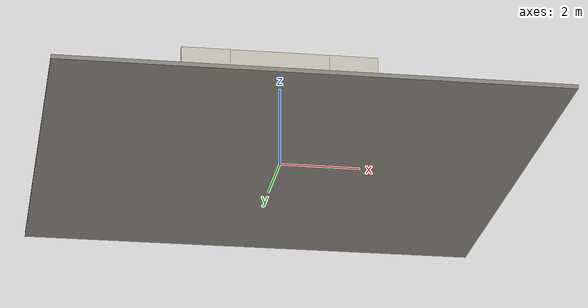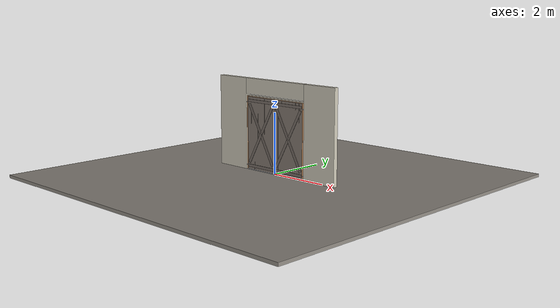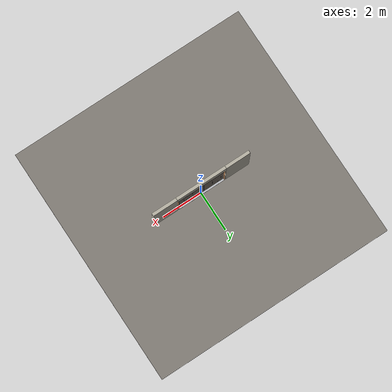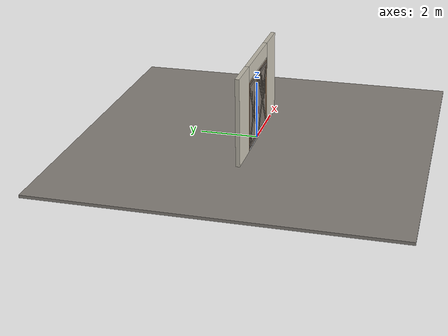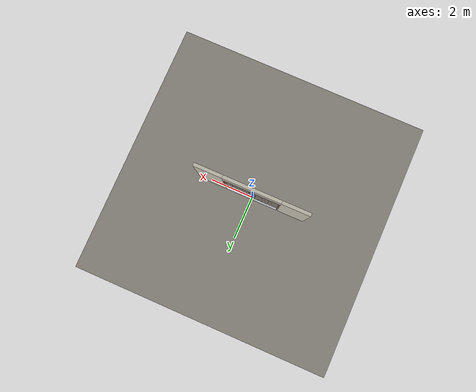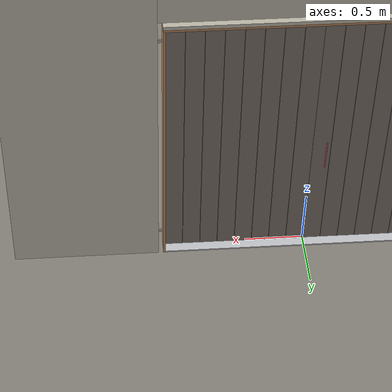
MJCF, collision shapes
<?xml version="1.0" ?>
<mujoco model="db0395_swing_double_full">
  <compiler angle="radian" meshdir="../../hardware" texturedir="../../textures" autolimits="true" inertiafromgeom="false"/>
  <option timestep="0.002" integrator="implicitfast" cone="elliptic" impratio="10" noslip_iterations="3">
    <flag multiccd="enable"/>
  </option>
  <size memory="16M"/>
  <default>
    <geom condim="4" solref="0.005 1" solimp="0.95 0.99 0.001"/>
    <joint solreflimit="0.005 1" solimplimit="0.95 0.99 0.001"/>
    <tendon solreflimit="0.005 1"/>
    <equality solref="0.002 1"/>
  </default>
  <visual>
    <headlight ambient="0.4 0.4 0.4" diffuse="0.7 0.7 0.7" specular="0.2 0.2 0.2"/>
    <quality shadowsize="4096"/>
    <map znear="0.01" zfar="60"/>
  </visual>
  <asset>
    <mesh name="pull_2b47e55ff8" file="pull_2b47e55ff8.obj"/>
    <mesh name="strap_hinge_118b895b75" file="strap_hinge_118b895b75.obj"/>
    <material name="mat_floor" rgba="0.55 0.53 0.5 1" specular="0.2" shininess="0.15" reflectance="0"/>
    <material name="mat_wall" rgba="0.78 0.76 0.7 1" specular="0.2" shininess="0.1" reflectance="0"/>
    <material name="mat_leaf_a" rgba="0.5 0.46 0.425 1" specular="0.2" shininess="0.15" reflectance="0"/>
    <material name="mat_leaf_a_brace" rgba="0.45 0.414 0.383 1" specular="0.2" shininess="0.2" reflectance="0"/>
    <material name="mat_hinge" rgba="0.65 0.66 0.68 1" specular="0.74" shininess="0.5" reflectance="0.36"/>
    <material name="mat_op_black_matte_metal" rgba="0.05 0.05 0.05 1" specular="0.38" shininess="0.3" reflectance="0.12"/>
    <material name="mat_leaf_b" rgba="0.5 0.46 0.425 1" specular="0.2" shininess="0.15" reflectance="0"/>
    <material name="mat_leaf_b_brace" rgba="0.45 0.414 0.383 1" specular="0.2" shininess="0.2" reflectance="0"/>
    <material name="mat_frame" rgba="0.75 0.55 0.38 1" specular="0.2" shininess="0.45" reflectance="0"/>
    <material name="mat_threshold" rgba="0.8 0.81 0.83 1" specular="0.8" shininess="0.6" reflectance="0.4"/>
    <texture name="skybox" type="skybox" builtin="gradient" rgb1="0.6 0.7 0.85" rgb2="0.9 0.92 0.95" width="256" height="256"/>
  </asset>
  <worldbody>
    <light name="sun" pos="1.5 -2.5 4" dir="-0.3 0.5 -0.8" directional="true" diffuse="0.8 0.8 0.8" specular="0.3 0.3 0.3" castshadow="true"/>
    <light name="fill" pos="-1.5 2.5 3" dir="0.3 -0.5 -0.7" directional="true" diffuse="0.35 0.35 0.4" castshadow="false"/>
    <camera name="robot_view" pos="0 -2.856687 2.014912" xyaxes="1 0 0 0 0.26963 0.962964" fovy="52"/>
    <camera name="far_view" pos="0 2.917687 2.014912" xyaxes="-1 0 0 0 -0.26963 0.962964" fovy="52"/>
    <camera name="iso" pos="-2.194262 -2.394737 2.476863" xyaxes="0.741536 -0.670913 0 0.242917 0.268487 0.932151" fovy="46"/>
    <camera name="detail_handle" pos="0.0735 -0.867 1.33" xyaxes="0.97561 0.219512 0 -0.070934 0.315262 0.94635" fovy="38"/>
    <geom name="floor" type="box" size="6 6 0.05" pos="0 0 -0.05" material="mat_floor" group="0" contype="1" conaffinity="1" friction="0.8 0.005 0.0001" density="2400"/>
    <geom name="wall_left" type="box" size="0.61775 0.0725 1.5065" pos="-1.88225 0.0305 1.5065" material="mat_wall" group="0" contype="1" conaffinity="1" friction="0.6 0.005 0.0001" density="800"/>
    <geom name="wall_right" type="box" size="0.61775 0.0725 1.5065" pos="1.88225 0.0305 1.5065" material="mat_wall" group="0" contype="1" conaffinity="1" friction="0.6 0.005 0.0001" density="800"/>
    <geom name="wall_header" type="box" size="1.2645 0.0725 0.255" pos="0 0.0305 2.758" material="mat_wall" group="0" contype="1" conaffinity="1" friction="0.6 0.005 0.0001" density="800"/>
    <geom name="hinge_pintle_0" type="cylinder" size="0.008 0.02" pos="-1.2015 -0.029 0.141" material="mat_hinge" group="1" contype="0" conaffinity="0" density="7850"/>
    <geom name="hinge_pintle_1" type="cylinder" size="0.008 0.02" pos="-1.2015 -0.029 2.233" material="mat_hinge" group="1" contype="0" conaffinity="0" density="7850"/>
    <geom name="hinge_pintle_0_2" type="cylinder" size="0.008 0.02" pos="1.2015 -0.029 0.141" material="mat_hinge" group="1" contype="0" conaffinity="0" density="7850"/>
    <geom name="hinge_pintle_1_2" type="cylinder" size="0.008 0.02" pos="1.2015 -0.029 2.233" material="mat_hinge" group="1" contype="0" conaffinity="0" density="7850"/>
    <geom name="jamb_l" type="box" size="0.0095 0.0725 1.2065" pos="-1.214 0.0305 1.2065" material="mat_frame" group="0" contype="1" conaffinity="1" friction="0.6 0.005 0.0001" density="300"/>
    <geom name="jamb_r" type="box" size="0.0095 0.0725 1.2065" pos="1.214 0.0305 1.2065" material="mat_frame" group="0" contype="1" conaffinity="1" friction="0.6 0.005 0.0001" density="300"/>
    <geom name="jamb_head" type="box" size="1.2235 0.0725 0.0095" pos="0 0.0305 2.4225" material="mat_frame" group="0" contype="1" conaffinity="1" friction="0.6 0.005 0.0001" density="300"/>
    <geom name="head_stud" type="box" size="1.2235 0.0725 0.015" pos="0 0.0305 2.447" material="mat_wall" group="0" contype="1" conaffinity="1" friction="0.6 0.005 0.0001" density="500"/>
    <geom name="threshold" type="box" size="1.2235 0.0725 0.0065" pos="0 0.0305 0.0065" material="mat_threshold" group="0" contype="1" conaffinity="1" friction="0.5 0.005 0.0001" density="2700"/>
    <geom name="hinge_pintle_0_strap_0" type="box" size="0.028 0.0064 0.016" pos="-1.237 -0.029 0.141" material="mat_hinge" group="1" contype="0" conaffinity="0" density="7850"/>
    <geom name="hinge_pintle_0_strap_1" type="box" size="0.028 0.0064 0.016" pos="1.237 -0.029 0.141" material="mat_hinge" group="1" contype="0" conaffinity="0" density="7850"/>
    <geom name="hinge_pintle_1_strap_0" type="box" size="0.028 0.0064 0.016" pos="-1.237 -0.029 2.233" material="mat_hinge" group="1" contype="0" conaffinity="0" density="7850"/>
    <geom name="hinge_pintle_1_strap_1" type="box" size="0.028 0.0064 0.016" pos="1.237 -0.029 2.233" material="mat_hinge" group="1" contype="0" conaffinity="0" density="7850"/>
    <site name="approach_point" pos="0 -1.5 0" quat="1 0 0 0" size="0.05" rgba="0.2 0.9 0.2 0.5" group="4"/>
    <site name="goal_point" pos="0 1.5 0" quat="1 0 0 0" size="0.05" rgba="0.2 0.9 0.2 0.5" group="4"/>
    <site name="door_plane_center" pos="0 0 1.2065" quat="1 0 0 0" size="0.02" rgba="0.2 0.9 0.2 0.5" group="4"/>
    <site name="approach_point_2" pos="0 -1.5 0" quat="1 0 0 0" size="0.05" rgba="0.2 0.9 0.2 0.5" group="4"/>
    <site name="goal_point_2" pos="0 1.5 0" quat="1 0 0 0" size="0.05" rgba="0.2 0.9 0.2 0.5" group="4"/>
    <site name="door_plane_center_2" pos="0 0 1.2065" quat="1 0 0 0" size="0.02" rgba="0.2 0.9 0.2 0.5" group="4"/>
    <site name="approach_point_3" pos="0 -1.5 0" quat="1 0 0 0" size="0.05" rgba="0.2 0.9 0.2 0.5" group="4"/>
    <site name="goal_point_3" pos="0 1.5 0" quat="1 0 0 0" size="0.05" rgba="0.2 0.9 0.2 0.5" group="4"/>
    <site name="door_plane_center_3" pos="0 0 1.2065" quat="1 0 0 0" size="0.02" rgba="0.2 0.9 0.2 0.5" group="4"/>
    <body name="leaf_a" pos="-1.2045 0 0">
      <inertial pos="0.585778 -0.00179 1.21058" mass="62.748227" quat="0.500402 -0.498007 -0.501987 -0.499596" diaginertia="7.761512255 32.277248622 40.008313012"/>
      <joint name="leaf_a_hinge" type="hinge" axis="0 0 -1" pos="0.003 -0.029 0" limited="true" range="0 1.396263" damping="0.948781" frictionloss="28.985632" armature="0.02"/>
      <geom name="leaf_a_slab" type="box" size="0.6 0.022 1.196" pos="0.603 0 1.213" material="mat_leaf_a" group="0" contype="1" conaffinity="1" friction="0.45 0.005 0.0001" density="1"/>
      <geom name="leaf_a_plank_gap_1" type="box" size="0.002 0.023 1.186" pos="0.153 0 1.213" material="mat_leaf_a_brace" group="1" contype="0" conaffinity="0" density="1"/>
      <geom name="leaf_a_plank_gap_2" type="box" size="0.002 0.023 1.186" pos="0.303 0 1.213" material="mat_leaf_a_brace" group="1" contype="0" conaffinity="0" density="1"/>
      <geom name="leaf_a_plank_gap_3" type="box" size="0.002 0.023 1.186" pos="0.453 0 1.213" material="mat_leaf_a_brace" group="1" contype="0" conaffinity="0" density="1"/>
      <geom name="leaf_a_plank_gap_4" type="box" size="0.002 0.023 1.186" pos="0.603 0 1.213" material="mat_leaf_a_brace" group="1" contype="0" conaffinity="0" density="1"/>
      <geom name="leaf_a_plank_gap_5" type="box" size="0.002 0.023 1.186" pos="0.753 0 1.213" material="mat_leaf_a_brace" group="1" contype="0" conaffinity="0" density="1"/>
      <geom name="leaf_a_plank_gap_6" type="box" size="0.002 0.023 1.186" pos="0.903 0 1.213" material="mat_leaf_a_brace" group="1" contype="0" conaffinity="0" density="1"/>
      <geom name="leaf_a_plank_gap_7" type="box" size="0.002 0.023 1.186" pos="1.053 0 1.213" material="mat_leaf_a_brace" group="1" contype="0" conaffinity="0" density="1"/>
      <geom name="leaf_a_batten_13" type="box" size="0.57 0.01 0.045" pos="0.603 -0.032 0.137" material="mat_leaf_a_brace" group="1" contype="0" conaffinity="0" density="1"/>
      <geom name="leaf_a_batten_228" type="box" size="0.57 0.01 0.045" pos="0.603 -0.032 2.289" material="mat_leaf_a_brace" group="1" contype="0" conaffinity="0" density="1"/>
      <geom name="leaf_a_brace_z" type="box" size="1.099716 0.01 0.045" pos="0.603 -0.032 1.213" quat="0.858561 0 -0.512711 0" material="mat_leaf_a_brace" group="1" contype="0" conaffinity="0" density="1"/>
      <geom name="leaf_a_brace_x" type="box" size="1.099716 0.01 0.045" pos="0.603 -0.032 1.213" quat="0.858561 0 0.512711 0" material="mat_leaf_a_brace" group="1" contype="0" conaffinity="0" density="1"/>
      <geom name="hinge_strap_0" type="mesh" mesh="strap_hinge_118b895b75" pos="0.003 -0.025 0.167" material="mat_hinge" group="1" contype="0" conaffinity="0" density="7850"/>
      <geom name="hinge_strap_eye_0" type="cylinder" size="0.011 0.012" pos="0.003 -0.029 0.167" material="mat_hinge" group="1" contype="0" conaffinity="0" density="7850"/>
      <geom name="hinge_strap_neck_0" type="box" size="0.012 0.006 0.006" pos="0.003 -0.027 0.167" material="mat_hinge" group="1" contype="0" conaffinity="0" density="7850"/>
      <geom name="hinge_strap_1" type="mesh" mesh="strap_hinge_118b895b75" pos="0.003 -0.025 2.259" material="mat_hinge" group="1" contype="0" conaffinity="0" density="7850"/>
      <geom name="hinge_strap_eye_1" type="cylinder" size="0.011 0.012" pos="0.003 -0.029 2.259" material="mat_hinge" group="1" contype="0" conaffinity="0" density="7850"/>
      <geom name="hinge_strap_neck_1" type="box" size="0.012 0.006 0.006" pos="0.003 -0.027 2.259" material="mat_hinge" group="1" contype="0" conaffinity="0" density="7850"/>
      <geom name="leaf_a_pull_n" type="mesh" mesh="pull_2b47e55ff8" pos="1.098 -0.022 1.05" quat="0.707107 0.707107 0 0" material="mat_op_black_matte_metal" group="1" contype="0" conaffinity="0" density="3000"/>
      <geom name="leaf_a_pull_col_n" type="capsule" size="0.006 0.13" pos="1.098 -0.067 1.05" material="mat_op_black_matte_metal" group="3" contype="1" conaffinity="1" rgba="0.8 0.3 0.3 0.25" friction="0.7 0.01 0.0001" density="3000"/>
      <geom name="leaf_a_pull_p" type="mesh" mesh="pull_2b47e55ff8" pos="1.098 0.022 1.05" quat="-0.707107 0.707107 0 0" material="mat_op_black_matte_metal" group="1" contype="0" conaffinity="0" density="3000"/>
      <geom name="leaf_a_pull_col_p" type="capsule" size="0.006 0.13" pos="1.098 0.067 1.05" material="mat_op_black_matte_metal" group="3" contype="1" conaffinity="1" rgba="0.8 0.3 0.3 0.25" friction="0.7 0.01 0.0001" density="3000"/>
      <site name="leaf_a_pull_grip_n" pos="1.098 -0.067 1.05" quat="1 0 0 0" size="0.012" rgba="0.2 0.9 0.2 0.5" group="4"/>
      <site name="leaf_a_pull_grip_p" pos="1.098 0.067 1.05" quat="1 0 0 0" size="0.012" rgba="0.2 0.9 0.2 0.5" group="4"/>
      <site name="leaf_a_edge_mid" pos="1.203 0 1.196" quat="1 0 0 0" size="0.02" rgba="0.2 0.9 0.2 0.5" group="4"/>
    </body>
    <body name="leaf_b" pos="1.2045 0 0">
      <inertial pos="-0.578057 -0.001817 1.213" mass="62.602973" quat="0.501205 0.498792 -0.501205 0.498792" diaginertia="7.605661927 32.649589533 40.23135234"/>
      <joint name="leaf_b_hinge" type="hinge" axis="0 0 1" pos="-0.003 -0.029 0" limited="true" range="0 0.001" damping="0.948781" frictionloss="28.985632" armature="0.02"/>
      <geom name="leaf_b_slab" type="box" size="0.6 0.022 1.196" pos="-0.603 0 1.213" material="mat_leaf_b" group="0" contype="1" conaffinity="1" friction="0.45 0.005 0.0001" density="1"/>
      <geom name="leaf_b_plank_gap_1" type="box" size="0.002 0.023 1.186" pos="-0.153 0 1.213" material="mat_leaf_b_brace" group="1" contype="0" conaffinity="0" density="1"/>
      <geom name="leaf_b_plank_gap_2" type="box" size="0.002 0.023 1.186" pos="-0.303 0 1.213" material="mat_leaf_b_brace" group="1" contype="0" conaffinity="0" density="1"/>
      <geom name="leaf_b_plank_gap_3" type="box" size="0.002 0.023 1.186" pos="-0.453 0 1.213" material="mat_leaf_b_brace" group="1" contype="0" conaffinity="0" density="1"/>
      <geom name="leaf_b_plank_gap_4" type="box" size="0.002 0.023 1.186" pos="-0.603 0 1.213" material="mat_leaf_b_brace" group="1" contype="0" conaffinity="0" density="1"/>
      <geom name="leaf_b_plank_gap_5" type="box" size="0.002 0.023 1.186" pos="-0.753 0 1.213" material="mat_leaf_b_brace" group="1" contype="0" conaffinity="0" density="1"/>
      <geom name="leaf_b_plank_gap_6" type="box" size="0.002 0.023 1.186" pos="-0.903 0 1.213" material="mat_leaf_b_brace" group="1" contype="0" conaffinity="0" density="1"/>
      <geom name="leaf_b_plank_gap_7" type="box" size="0.002 0.023 1.186" pos="-1.053 0 1.213" material="mat_leaf_b_brace" group="1" contype="0" conaffinity="0" density="1"/>
      <geom name="leaf_b_batten_13" type="box" size="0.57 0.01 0.045" pos="-0.603 -0.032 0.137" material="mat_leaf_b_brace" group="1" contype="0" conaffinity="0" density="1"/>
      <geom name="leaf_b_batten_228" type="box" size="0.57 0.01 0.045" pos="-0.603 -0.032 2.289" material="mat_leaf_b_brace" group="1" contype="0" conaffinity="0" density="1"/>
      <geom name="leaf_b_brace_z" type="box" size="1.099716 0.01 0.045" pos="-0.603 -0.032 1.213" quat="0.858561 0 0.512711 0" material="mat_leaf_b_brace" group="1" contype="0" conaffinity="0" density="1"/>
      <geom name="leaf_b_brace_x" type="box" size="1.099716 0.01 0.045" pos="-0.603 -0.032 1.213" quat="0.858561 0 -0.512711 0" material="mat_leaf_b_brace" group="1" contype="0" conaffinity="0" density="1"/>
      <geom name="hinge_strap_0_2" type="mesh" mesh="strap_hinge_118b895b75" pos="-0.003 -0.025 0.167" quat="0 0 0 1" material="mat_hinge" group="1" contype="0" conaffinity="0" density="7850"/>
      <geom name="hinge_strap_eye_0_2" type="cylinder" size="0.011 0.012" pos="-0.003 -0.029 0.167" material="mat_hinge" group="1" contype="0" conaffinity="0" density="7850"/>
      <geom name="hinge_strap_neck_0_2" type="box" size="0.012 0.006 0.006" pos="-0.003 -0.027 0.167" material="mat_hinge" group="1" contype="0" conaffinity="0" density="7850"/>
      <geom name="hinge_strap_1_2" type="mesh" mesh="strap_hinge_118b895b75" pos="-0.003 -0.025 2.259" quat="0 0 0 1" material="mat_hinge" group="1" contype="0" conaffinity="0" density="7850"/>
      <geom name="hinge_strap_eye_1_2" type="cylinder" size="0.011 0.012" pos="-0.003 -0.029 2.259" material="mat_hinge" group="1" contype="0" conaffinity="0" density="7850"/>
      <geom name="hinge_strap_neck_1_2" type="box" size="0.012 0.006 0.006" pos="-0.003 -0.027 2.259" material="mat_hinge" group="1" contype="0" conaffinity="0" density="7850"/>
      <site name="leaf_b_edge_mid" pos="-1.203 0 1.196" quat="1 0 0 0" size="0.02" rgba="0.2 0.9 0.2 0.5" group="4"/>
    </body>
  </worldbody>
  <sensor>
    <jointpos name="leaf_a_hinge_pos" joint="leaf_a_hinge"/>
    <jointvel name="leaf_a_hinge_vel" joint="leaf_a_hinge"/>
    <jointpos name="leaf_b_hinge_pos" joint="leaf_b_hinge"/>
    <jointvel name="leaf_b_hinge_vel" joint="leaf_b_hinge"/>
  </sensor>
</mujoco>
